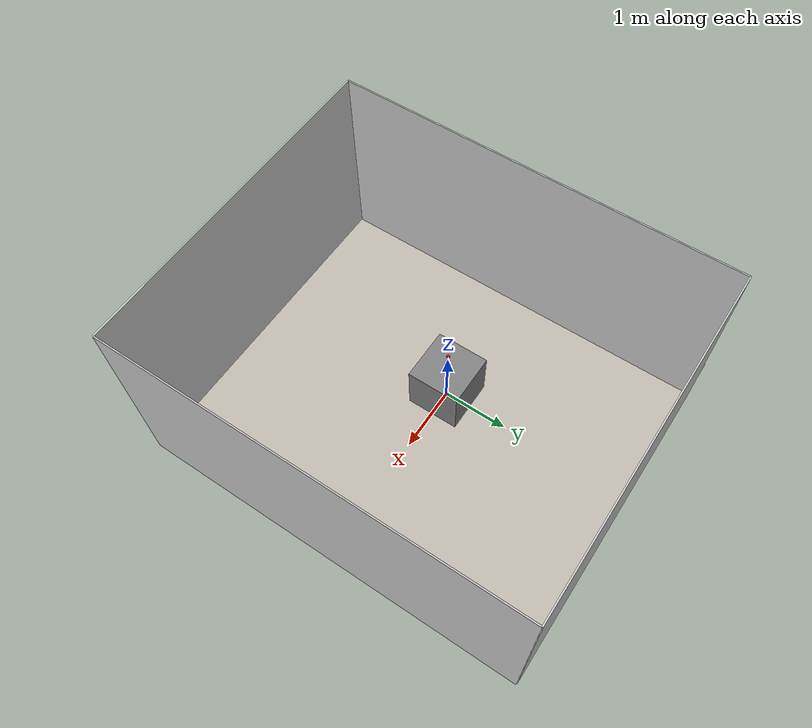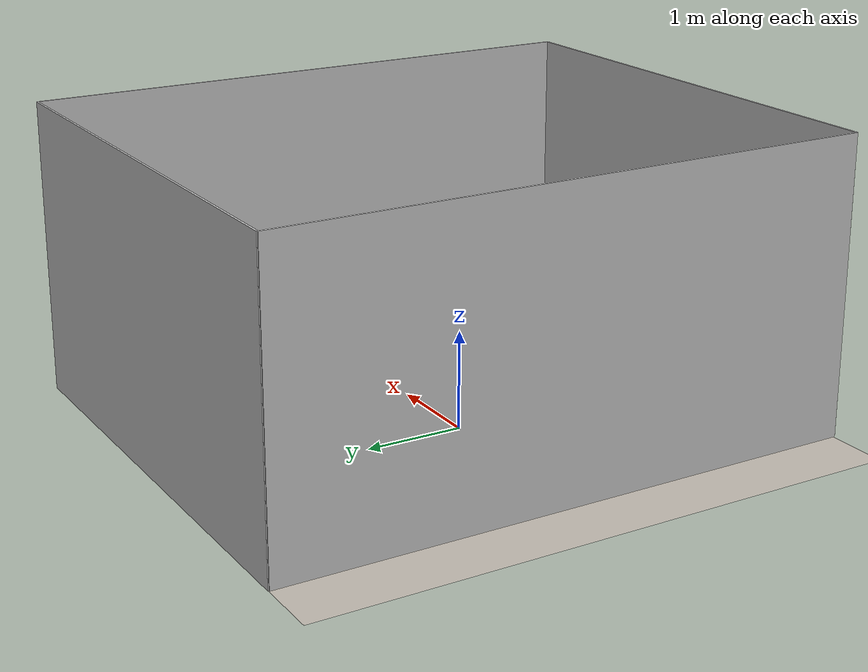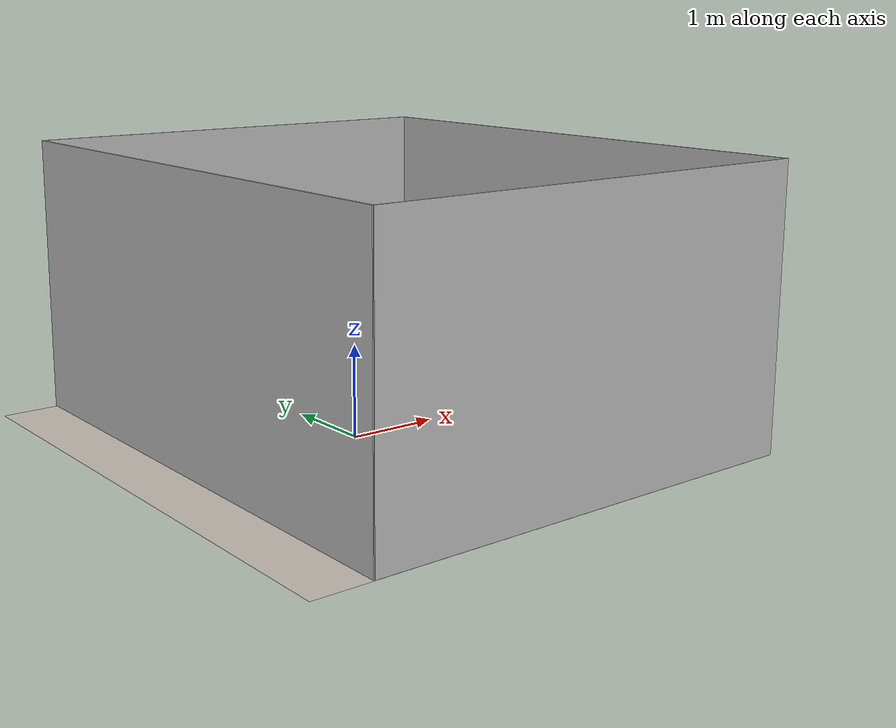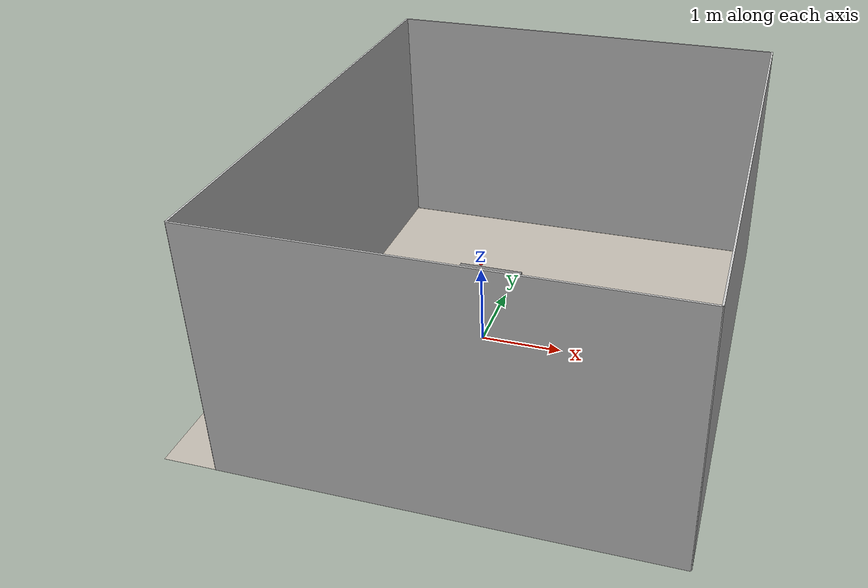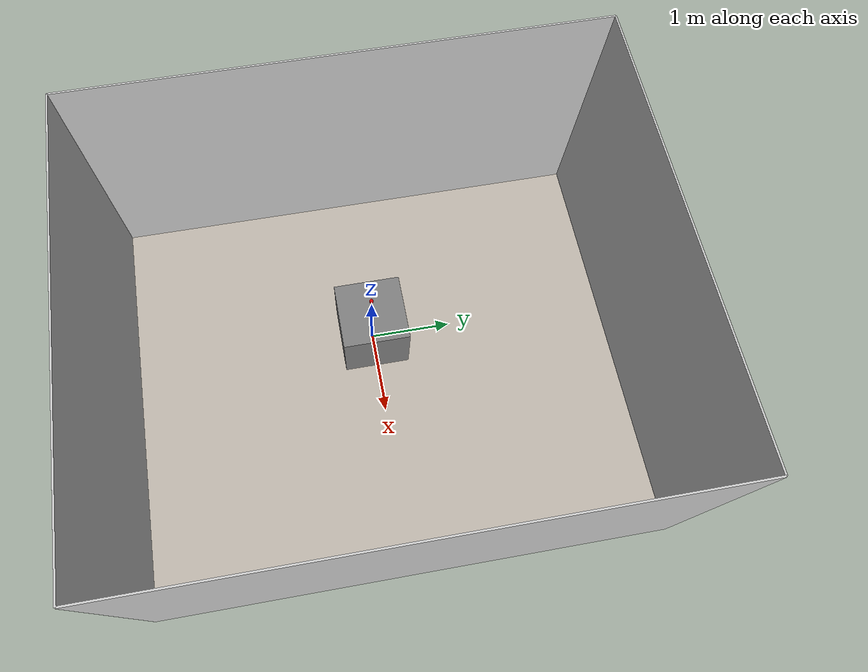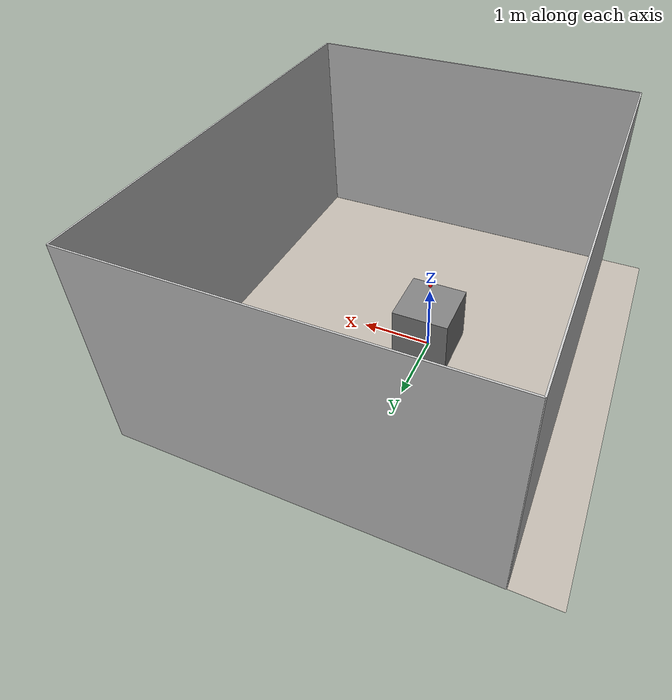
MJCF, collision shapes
<mujoco model="table_arena">
  <asset>
    <texture builtin="gradient" height="256" rgb1=".9 .9 1." rgb2=".2 .3 .4" type="skybox" width="256"/>

    <!-- floor texture and material-->

    <texture file="../textures/tile_grigia_caldera_porcelain_floor.png" type="2d" name="texplane"/>

    <material name="floorplane" reflectance="0.0" shininess="0.0"
	      specular="0.0" texrepeat="3 3" texture="texplane" texuniform="true"/>

    <!-- table texture and material -->
    <texture file="../textures/martin_novak_wood_table.png" type="cube" name="tex-table"/>
    <material name="table_texture" reflectance="0.0" shininess="0.0" specular="0.2" texrepeat="1 1" texture="tex-table" />
    <!-- table legs texture and material -->
    <texture file="../textures/martin_novak_wood_table.png" type="cube" name="tex-table-legs"/>
    <material name="table_legs" reflectance="0.8" shininess="0.8" texrepeat="1 1" texture="tex-table-legs" />

    <!-- wall texture and material -->
    <texture file="../textures/smooth_light_gray_plaster.png" type="2d" name="tex-wall"/>
    <material name="walls_mat" reflectance="0.0" shininess="0.3" specular="0.8" texrepeat="3 3" texture="tex-wall" texuniform="true" />

    <!-- added table texture and material for domain randomization -->
    <texture  name="textable" builtin="flat" height="512" width="512" rgb1="0.8 0.8 0.8" rgb2="0.8 0.8 0.8"/>
    <material name="table_mat" texture="textable" />

    <!-- Specify your own scene texture, change it on your own. -->
    <texture file="kitchen_background/kitchen_background.png" name="tex-custom" type="2d"/>
    <material name="custom" reflectance="0.5" texrepeat="1 1" texture="tex-custom" texuniform="false"/>
    <mesh file="kitchen_background/visual/kitchen_background_vis.msh" name="custom_vis" scale="0.01 0.01 0.01"/>

  </asset>
  <worldbody>
    <!-- Floor -->
    <geom condim="3" group="1" material="floorplane" name="floor" pos="0 0 0" size="3 3 .125" type="plane"/>

    <geom pos="-1.65 0.0 0.0" quat="0 0 0 1" type="mesh" mesh="custom_vis" conaffinity="0" contype="0" group="1" material="custom"/>

    <light name="light_kitchen" diffuse=".8 .8 .8" dir="0 0 -1" directional="true" pos="-1.75 0 1.6" specular="0.8 0.8 0.8" castshadow="false"/>

    <geom pos="0.5 3 1.5" quat="0.7071 0.7071 0 0" size="2.5 1.5 0.01" type="box" conaffinity="0" contype="0" group="1" name="wall_left_visual" material="walls_mat"/>
    <geom pos="0.5 -3 1.5" quat="0.7071 -0.7071 0 0" size="2.5 1.5 0.01" type="box" conaffinity="0" contype="0" group="1" name="wall_right_visual" material="walls_mat"/>
    <geom pos="-2 0 1.5" quat="0.5 0.5 0.5 0.5" size="3 1.5 0.01" type="box" conaffinity="0" contype="0" group="1" name="wall_rear_visual" material="walls_mat"/>
    <geom pos="3 0 1.5" quat="0.5 0.5 -0.5 -0.5" size="3 1.5 0.01" type="box" conaffinity="0" contype="0" group="1" name="wall_front_visual" material="walls_mat"/>
    <!-- Table body -->
    <body name="table" pos="0 0 0.4">
      <geom pos="0 0 0" size="0.4 0.4 0.4" type="box" group="0" name="table_collision" friction="1 0.005 0.0001"/>
      <geom pos="0 0 0" size="0.4 0.4 0.4" type="box" conaffinity="0" contype="0" group="1" name="table_visual" material="table_texture"/>
      <site pos="0 0 0.4" name="table_top" size="0.001 0.001 0.001" rgba="0 0 0 0"/>
      <!-- Legs (visual only) -->
      <geom pos="0 0 0" size="0.05 0.1" type="cylinder" conaffinity="0" contype="0" group="1" name="table_leg1_visual" material="table_legs"/>
      <geom pos="0 0 0" size="0.05 0.1" type="cylinder" conaffinity="0" contype="0" group="1" name="table_leg2_visual" material="table_legs"/>
      <geom pos="0 0 0" size="0.05 0.1" type="cylinder" conaffinity="0" contype="0" group="1" name="table_leg3_visual" material="table_legs"/>
      <geom pos="0 0 0" size="0.05 0.1" type="cylinder" conaffinity="0" contype="0" group="1" name="table_leg4_visual" material="table_legs"/>
    </body>

    <!-- 固定障碍球，不会掉落 -->
    <body name="obstacle_ball" pos="0.0 0.0 1.1">
      <geom name="obstacle_collision" type="sphere" size="0.025"
            rgba="1 0 0 1" group="4" contype="1" conaffinity="1" friction="1 0.1 0.01"/>
    </body>

    <light name="light1" diffuse=".8 .8 .8" dir="0 -.15 -1" directional="false" pos="1 1 4.0" specular="0.3 0.3 0.3" castshadow="false"/>
    <light name="light2" diffuse=".8 .8 .8" dir="0 -.15 -1" directional="false" pos="-3. -3. 4.0" specular="0.3 0.3 0.3" castshadow="false"/>

    <!-- front view -->
    <camera mode="fixed" name="frontview" pos="1.0 0 1.45" quat="0.56 0.43 0.43 0.56"/>
    <!-- bird view -->
    <camera mode="fixed" name="birdview" pos="-0.2 0 3.0" quat="0.7071 0 0 0.7071"/>
    <!-- agent view -->
    <camera mode="fixed" name="agentview" pos="0.5 0 1.35" quat="0.653 0.271 0.271 0.653"/>

    <!-- side view -->
    <camera mode="fixed" name="sideview" pos="-0.05651774593317116 1.2761224129427358 1.4879572214102434" quat="0.009905065491771751 0.006877963156909582 0.5912228352893879 0.806418094001364" />
  </worldbody>
</mujoco>
